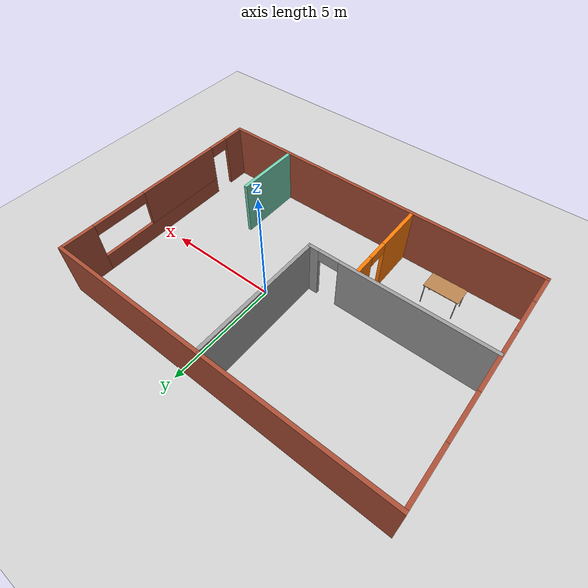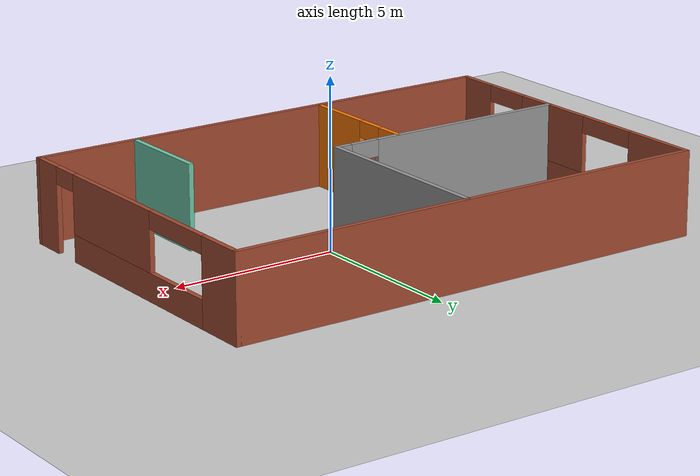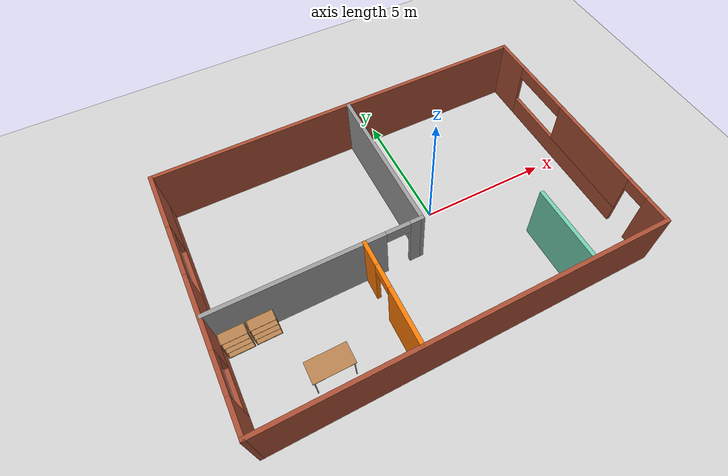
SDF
<sdf version="1.6">
 <world name="default">
  <model name="ground_plane">
   <static>1</static>
   <link name="link">
    <collision name="collision">
     <geometry><plane><normal>0 0 1</normal><size>100 100</size></plane></geometry>
     <surface><friction><ode><mu>100</mu><mu2>50</mu2></ode></friction></surface>
    </collision>
    <visual name="visual">
     <cast_shadows>0</cast_shadows>
     <geometry><plane><normal>0 0 1</normal><size>100 100</size></plane></geometry>
     <material>
      <script><uri>file://media/materials/scripts/gazebo.material</uri><name>Gazebo/Grey</name></script>
     </material>
    </visual>
   </link>
  </model>
  <model name="Building">
   <pose>-1.39723 -0.36677 0 0 -0 0</pose>
   <link name="Wall_15">
    <collision name="Wall_15_Collision">
     <geometry><box><size>15 0.15 2.5</size></box></geometry>
     <pose>0 0 1.25 0 -0 0</pose>
    </collision>
    <visual name="Wall_15_Visual">
     <pose>0 0 1.25 0 -0 0</pose>
     <geometry><box><size>15 0.15 2.5</size></box></geometry>
     <material>
      <script><uri>file://media/materials/scripts/gazebo.material</uri><name>Gazebo/Bricks</name></script>
      <ambient>1 1 1 1</ambient>
     </material>
     <meta><layer>0</layer></meta>
    </visual>
    <pose>0 4.925 0 0 -0 0</pose>
   </link>
   <link name="Wall_16">
    <pose>7.425 0 0 0 0 -1.5708</pose>
    <visual name="Wall_16_Visual_0">
     <pose>-4.22001 0 1.25 0 -0 0</pose>
     <geometry><box><size>1.55997 0.15 2.5</size></box></geometry>
     <material>
      <script><uri>file://media/materials/scripts/gazebo.material</uri><name>Gazebo/Bricks</name></script>
      <ambient>1 1 1 1</ambient>
     </material>
     <meta><layer>0</layer></meta>
    </visual>
    <collision name="Wall_16_Collision_0">
     <geometry><box><size>1.55997 0.15 2.5</size></box></geometry>
     <pose>-4.22001 0 1.25 0 -0 0</pose>
    </collision>
    <visual name="Wall_16_Visual_1">
     <pose>4.45188 0 1.25 0 -0 0</pose>
     <geometry><box><size>1.09624 0.15 2.5</size></box></geometry>
     <material>
      <script><uri>file://media/materials/scripts/gazebo.material</uri><name>Gazebo/Bricks</name></script>
      <ambient>1 1 1 1</ambient>
     </material>
     <meta><layer>0</layer></meta>
    </visual>
    <collision name="Wall_16_Collision_1">
     <geometry><box><size>1.09624 0.15 2.5</size></box></geometry>
     <pose>4.45188 0 1.25 0 -0 0</pose>
    </collision>
    <visual name="Wall_16_Visual_2">
     <pose>-0.218135 0 0.4 0 -0 0</pose>
     <geometry><box><size>6.44378 0.15 0.8</size></box></geometry>
     <material>
      <script><uri>file://media/materials/scripts/gazebo.material</uri><name>Gazebo/Bricks</name></script>
      <ambient>1 1 1 1</ambient>
     </material>
     <meta><layer>0</layer></meta>
    </visual>
    <collision name="Wall_16_Collision_2">
     <geometry><box><size>6.44378 0.15 0.8</size></box></geometry>
     <pose>-0.218135 0 0.4 0 -0 0</pose>
    </collision>
    <visual name="Wall_16_Visual_3">
     <pose>1.03187 0 1.65 0 -0 0</pose>
     <geometry><box><size>3.94378 0.15 1.7</size></box></geometry>
     <material>
      <script><uri>file://media/materials/scripts/gazebo.material</uri><name>Gazebo/Bricks</name></script>
      <ambient>1 1 1 1</ambient>
     </material>
     <meta><layer>0</layer></meta>
    </visual>
    <collision name="Wall_16_Collision_3">
     <geometry><box><size>3.94378 0.15 1.7</size></box></geometry>
     <pose>1.03187 0 1.65 0 -0 0</pose>
    </collision>
    <visual name="Wall_16_Visual_4">
     <pose>3.45376 0 2.25 0 -0 0</pose>
     <geometry><box><size>0.9 0.15 0.5</size></box></geometry>
     <material>
      <script><uri>file://media/materials/scripts/gazebo.material</uri><name>Gazebo/Bricks</name></script>
      <ambient>1 1 1 1</ambient>
     </material>
     <meta><layer>0</layer></meta>
    </visual>
    <collision name="Wall_16_Collision_4">
     <geometry><box><size>0.9 0.15 0.5</size></box></geometry>
     <pose>3.45376 0 2.25 0 -0 0</pose>
    </collision>
    <visual name="Wall_16_Visual_5">
     <pose>-2.19003 0 2.25 0 -0 0</pose>
     <geometry><box><size>2.5 0.15 0.5</size></box></geometry>
     <material>
      <script><uri>file://media/materials/scripts/gazebo.material</uri><name>Gazebo/Bricks</name></script>
      <ambient>1 1 1 1</ambient>
     </material>
     <meta><layer>0</layer></meta>
    </visual>
    <collision name="Wall_16_Collision_5">
     <geometry><box><size>2.5 0.15 0.5</size></box></geometry>
     <pose>-2.19003 0 2.25 0 -0 0</pose>
    </collision>
   </link>
   <link name="Wall_17">
    <collision name="Wall_17_Collision">
     <geometry><box><size>15 0.15 2.5</size></box></geometry>
     <pose>0 0 1.25 0 -0 0</pose>
    </collision>
    <visual name="Wall_17_Visual">
     <pose>0 0 1.25 0 -0 0</pose>
     <geometry><box><size>15 0.15 2.5</size></box></geometry>
     <material>
      <script><uri>file://media/materials/scripts/gazebo.material</uri><name>Gazebo/Bricks</name></script>
      <ambient>1 1 1 1</ambient>
     </material>
     <meta><layer>0</layer></meta>
    </visual>
    <pose>0 -4.925 0 0 -0 3.14159</pose>
   </link>
   <link name="Wall_18">
    <pose>-7.425 0 0 0 -0 1.5708</pose>
    <visual name="Wall_18_Visual_0">
     <pose>-4.32724 0 1.25 0 -0 0</pose>
     <geometry><box><size>1.34552 0.15 2.5</size></box></geometry>
     <material>
      <script><uri>file://media/materials/scripts/gazebo.material</uri><name>Gazebo/Bricks</name></script>
      <ambient>1 1 1 1</ambient>
     </material>
     <meta><layer>0</layer></meta>
    </visual>
    <collision name="Wall_18_Collision_0">
     <geometry><box><size>1.34552 0.15 2.5</size></box></geometry>
     <pose>-4.32724 0 1.25 0 -0 0</pose>
    </collision>
    <visual name="Wall_18_Visual_1">
     <pose>0.672759 0 0.4 0 -0 0</pose>
     <geometry><box><size>8.65448 0.15 0.8</size></box></geometry>
     <material>
      <script><uri>file://media/materials/scripts/gazebo.material</uri><name>Gazebo/Bricks</name></script>
      <ambient>1 1 1 1</ambient>
     </material>
     <meta><layer>0</layer></meta>
    </visual>
    <collision name="Wall_18_Collision_1">
     <geometry><box><size>8.65448 0.15 0.8</size></box></geometry>
     <pose>0.672759 0 0.4 0 -0 0</pose>
    </collision>
    <visual name="Wall_18_Visual_2">
     <pose>-0.765256 0 1.65 0 -0 0</pose>
     <geometry><box><size>2.77845 0.15 1.7</size></box></geometry>
     <material>
      <script><uri>file://media/materials/scripts/gazebo.material</uri><name>Gazebo/Bricks</name></script>
      <ambient>1 1 1 1</ambient>
     </material>
     <meta><layer>0</layer></meta>
    </visual>
    <collision name="Wall_18_Collision_2">
     <geometry><box><size>2.77845 0.15 1.7</size></box></geometry>
     <pose>-0.765256 0 1.65 0 -0 0</pose>
    </collision>
    <visual name="Wall_18_Visual_3">
     <pose>3.81198 0 1.65 0 -0 0</pose>
     <geometry><box><size>2.37603 0.15 1.7</size></box></geometry>
     <material>
      <script><uri>file://media/materials/scripts/gazebo.material</uri><name>Gazebo/Bricks</name></script>
      <ambient>1 1 1 1</ambient>
     </material>
     <meta><layer>0</layer></meta>
    </visual>
    <collision name="Wall_18_Collision_3">
     <geometry><box><size>2.37603 0.15 1.7</size></box></geometry>
     <pose>3.81198 0 1.65 0 -0 0</pose>
    </collision>
    <visual name="Wall_18_Visual_4">
     <pose>-2.90448 0 2.25 0 -0 0</pose>
     <geometry><box><size>1.5 0.15 0.5</size></box></geometry>
     <material>
      <script><uri>file://media/materials/scripts/gazebo.material</uri><name>Gazebo/Bricks</name></script>
      <ambient>1 1 1 1</ambient>
     </material>
     <meta><layer>0</layer></meta>
    </visual>
    <collision name="Wall_18_Collision_4">
     <geometry><box><size>1.5 0.15 0.5</size></box></geometry>
     <pose>-2.90448 0 2.25 0 -0 0</pose>
    </collision>
    <visual name="Wall_18_Visual_5">
     <pose>1.62397 0 2.25 0 -0 0</pose>
     <geometry><box><size>2 0.15 0.5</size></box></geometry>
     <material>
      <script><uri>file://media/materials/scripts/gazebo.material</uri><name>Gazebo/Bricks</name></script>
      <ambient>1 1 1 1</ambient>
     </material>
     <meta><layer>0</layer></meta>
    </visual>
    <collision name="Wall_18_Collision_5">
     <geometry><box><size>2 0.15 0.5</size></box></geometry>
     <pose>1.62397 0 2.25 0 -0 0</pose>
    </collision>
   </link>
   <link name="Wall_23">
    <pose>-3.58227 -0.985767 0 0 -0 0</pose>
    <visual name="Wall_23_Visual_0">
     <pose>-0.718243 0 1.25 0 -0 0</pose>
     <geometry><box><size>6.31351 0.15 2.5</size></box></geometry>
     <material>
      <script><uri>file://media/materials/scripts/gazebo.material</uri><name>Gazebo/Grey</name></script>
      <ambient>1 1 1 1</ambient>
     </material>
     <meta><layer>0</layer></meta>
    </visual>
    <collision name="Wall_23_Collision_0">
     <geometry><box><size>6.31351 0.15 2.5</size></box></geometry>
     <pose>-0.718243 0 1.25 0 -0 0</pose>
    </collision>
    <visual name="Wall_23_Visual_1">
     <pose>3.60676 0 1.25 0 -0 0</pose>
     <geometry><box><size>0.536487 0.15 2.5</size></box></geometry>
     <material>
      <script><uri>file://media/materials/scripts/gazebo.material</uri><name>Gazebo/Grey</name></script>
      <ambient>1 1 1 1</ambient>
     </material>
     <meta><layer>0</layer></meta>
    </visual>
    <collision name="Wall_23_Collision_1">
     <geometry><box><size>0.536487 0.15 2.5</size></box></geometry>
     <pose>3.60676 0 1.25 0 -0 0</pose>
    </collision>
    <visual name="Wall_23_Visual_2">
     <pose>2.88851 0 2.25 0 -0 0</pose>
     <geometry><box><size>0.9 0.15 0.5</size></box></geometry>
     <material>
      <script><uri>file://media/materials/scripts/gazebo.material</uri><name>Gazebo/Grey</name></script>
      <ambient>1 1 1 1</ambient>
     </material>
     <meta><layer>0</layer></meta>
    </visual>
    <collision name="Wall_23_Collision_2">
     <geometry><box><size>0.9 0.15 0.5</size></box></geometry>
     <pose>2.88851 0 2.25 0 -0 0</pose>
    </collision>
   </link>
   <link name="Wall_24">
    <collision name="Wall_24_Collision">
     <geometry><box><size>6 0.15 2.5</size></box></geometry>
     <pose>0 0 1.25 0 -0 0</pose>
    </collision>
    <visual name="Wall_24_Visual">
     <pose>0 0 1.25 0 -0 0</pose>
     <geometry><box><size>6 0.15 2.5</size></box></geometry>
     <material>
      <script><uri>file://media/materials/scripts/gazebo.material</uri><name>Gazebo/Grey</name></script>
      <ambient>1 1 1 1</ambient>
     </material>
     <meta><layer>0</layer></meta>
    </visual>
    <pose>0.217727 1.93923 0 0 -0 1.5708</pose>
   </link>
   <link name="Wall_26">
    <pose>-1.91826 -2.92501 0 0 0 -1.5708</pose>
    <visual name="Wall_26_Visual_0">
     <pose>-1.5205 0 1.25 0 -0 0</pose>
     <geometry><box><size>0.959 0.15 2.5</size></box></geometry>
     <material>
      <script><uri>file://media/materials/scripts/gazebo.material</uri><name>Gazebo/Grey</name></script>
      <ambient>0.996078 0.47451 0.0196078 1</ambient>
     </material>
     <meta><layer>0</layer></meta>
    </visual>
    <collision name="Wall_26_Collision_0">
     <geometry><box><size>0.959 0.15 2.5</size></box></geometry>
     <pose>-1.5205 0 1.25 0 -0 0</pose>
    </collision>
    <visual name="Wall_26_Visual_1">
     <pose>0.9295 0 1.25 0 -0 0</pose>
     <geometry><box><size>2.141 0.15 2.5</size></box></geometry>
     <material>
      <script><uri>file://media/materials/scripts/gazebo.material</uri><name>Gazebo/Grey</name></script>
      <ambient>0.996078 0.47451 0.0196078 1</ambient>
     </material>
     <meta><layer>0</layer></meta>
    </visual>
    <collision name="Wall_26_Collision_1">
     <geometry><box><size>2.141 0.15 2.5</size></box></geometry>
     <pose>0.9295 0 1.25 0 -0 0</pose>
    </collision>
    <visual name="Wall_26_Visual_2">
     <pose>-0.591 0 2.25 0 -0 0</pose>
     <geometry><box><size>0.9 0.15 0.5</size></box></geometry>
     <material>
      <script><uri>file://media/materials/scripts/gazebo.material</uri><name>Gazebo/Grey</name></script>
      <ambient>0.996078 0.47451 0.0196078 1</ambient>
     </material>
     <meta><layer>0</layer></meta>
    </visual>
    <collision name="Wall_26_Collision_2">
     <geometry><box><size>0.9 0.15 0.5</size></box></geometry>
     <pose>-0.591 0 2.25 0 -0 0</pose>
    </collision>
   </link>
   <link name="Wall_28">
    <collision name="Wall_28_Collision">
     <geometry><box><size>3 0.15 2.5</size></box></geometry>
     <pose>0 0 1.25 0 -0 0</pose>
    </collision>
    <visual name="Wall_28_Visual">
     <pose>0 0 1.25 0 -0 0</pose>
     <geometry><box><size>3 0.15 2.5</size></box></geometry>
     <material>
      <script><uri>file://media/materials/scripts/gazebo.material</uri><name>Gazebo/Grey</name></script>
      <ambient>0.435294 0.796078 0.67451 1</ambient>
     </material>
     <meta><layer>0</layer></meta>
    </visual>
    <pose>4.38813 -3.48002 0 0 0 -1.5708</pose>
   </link>
   <static>1</static>
  </model>
  <model name="table">
   <static>1</static>
   <link name="link">
    <collision name="surface">
     <pose>0 0 1 0 -0 0</pose>
     <geometry><box><size>1.5 0.8 0.03</size></box></geometry>
     <surface><friction><ode><mu>0.6</mu><mu2>0.6</mu2></ode></friction></surface>
    </collision>
    <visual name="visual1">
     <pose>0 0 1 0 -0 0</pose>
     <geometry><box><size>1.5 0.8 0.03</size></box></geometry>
     <material>
      <script><uri>file://media/materials/scripts/gazebo.material</uri><name>Gazebo/Wood</name></script>
     </material>
    </visual>
    <collision name="front_left_leg">
     <pose>0.68 0.38 0.5 0 -0 0</pose>
     <geometry><cylinder><radius>0.02</radius><length>1</length></cylinder></geometry>
    </collision>
    <visual name="front_left_leg">
     <pose>0.68 0.38 0.5 0 -0 0</pose>
     <geometry><cylinder><radius>0.02</radius><length>1</length></cylinder></geometry>
     <material>
      <script><uri>file://media/materials/scripts/gazebo.material</uri><name>Gazebo/Grey</name></script>
     </material>
    </visual>
    <collision name="front_right_leg">
     <pose>0.68 -0.38 0.5 0 -0 0</pose>
     <geometry><cylinder><radius>0.02</radius><length>1</length></cylinder></geometry>
    </collision>
    <visual name="front_right_leg">
     <pose>0.68 -0.38 0.5 0 -0 0</pose>
     <geometry><cylinder><radius>0.02</radius><length>1</length></cylinder></geometry>
     <material>
      <script><uri>file://media/materials/scripts/gazebo.material</uri><name>Gazebo/Grey</name></script>
     </material>
    </visual>
    <collision name="back_right_leg">
     <pose>-0.68 -0.38 0.5 0 -0 0</pose>
     <geometry><cylinder><radius>0.02</radius><length>1</length></cylinder></geometry>
    </collision>
    <visual name="back_right_leg">
     <pose>-0.68 -0.38 0.5 0 -0 0</pose>
     <geometry><cylinder><radius>0.02</radius><length>1</length></cylinder></geometry>
     <material>
      <script><uri>file://media/materials/scripts/gazebo.material</uri><name>Gazebo/Grey</name></script>
     </material>
    </visual>
    <collision name="back_left_leg">
     <pose>-0.68 0.38 0.5 0 -0 0</pose>
     <geometry><cylinder><radius>0.02</radius><length>1</length></cylinder></geometry>
    </collision>
    <visual name="back_left_leg">
     <pose>-0.68 0.38 0.5 0 -0 0</pose>
     <geometry><cylinder><radius>0.02</radius><length>1</length></cylinder></geometry>
     <material>
      <script><uri>file://media/materials/scripts/gazebo.material</uri><name>Gazebo/Grey</name></script>
     </material>
    </visual>
   </link>
   <pose>-5.85942 -3.93983 0 0 -0 0</pose>
  </model>
  <model name="bookshelf">
   <static>1</static>
   <link name="link">
    <inertial><mass>1</mass></inertial>
    <collision name="back">
     <pose>0 0.005 0.6 0 -0 0</pose>
     <geometry><box><size>0.9 0.01 1.2</size></box></geometry>
    </collision>
    <visual name="visual1">
     <pose>0 0.005 0.6 0 -0 0</pose>
     <geometry><box><size>0.9 0.01 1.2</size></box></geometry>
     <material>
      <script><uri>file://media/materials/scripts/gazebo.material</uri><name>Gazebo/Wood</name></script>
     </material>
    </visual>
    <collision name="left_side">
     <pose>0.45 -0.195 0.6 0 -0 0</pose>
     <geometry><box><size>0.02 0.4 1.2</size></box></geometry>
    </collision>
    <visual name="visual2">
     <pose>0.45 -0.195 0.6 0 -0 0</pose>
     <geometry><box><size>0.02 0.4 1.2</size></box></geometry>
     <material>
      <script><uri>file://media/materials/scripts/gazebo.material</uri><name>Gazebo/Wood</name></script>
     </material>
    </visual>
    <collision name="right_side">
     <pose>-0.45 -0.195 0.6 0 -0 0</pose>
     <geometry><box><size>0.02 0.4 1.2</size></box></geometry>
    </collision>
    <visual name="visual3">
     <pose>-0.45 -0.195 0.6 0 -0 0</pose>
     <geometry><box><size>0.02 0.4 1.2</size></box></geometry>
     <material>
      <script><uri>file://media/materials/scripts/gazebo.material</uri><name>Gazebo/Wood</name></script>
     </material>
    </visual>
    <collision name="bottom">
     <pose>0 -0.195 0.03 0 -0 0</pose>
     <geometry><box><size>0.88 0.4 0.06</size></box></geometry>
    </collision>
    <visual name="visual4">
     <pose>0 -0.195 0.03 0 -0 0</pose>
     <geometry><box><size>0.88 0.4 0.06</size></box></geometry>
     <material>
      <script><uri>file://media/materials/scripts/gazebo.material</uri><name>Gazebo/Wood</name></script>
     </material>
    </visual>
    <collision name="top">
     <pose>0 -0.195 1.19 0 -0 0</pose>
     <geometry><box><size>0.88 0.4 0.02</size></box></geometry>
    </collision>
    <visual name="visual5">
     <pose>0 -0.195 1.19 0 -0 0</pose>
     <geometry><box><size>0.88 0.4 0.02</size></box></geometry>
     <material>
      <script><uri>file://media/materials/scripts/gazebo.material</uri><name>Gazebo/Wood</name></script>
     </material>
    </visual>
    <collision name="low_shelf">
     <pose>0 -0.195 0.43 0 -0 0</pose>
     <geometry><box><size>0.88 0.4 0.02</size></box></geometry>
    </collision>
    <visual name="visual6">
     <pose>0 -0.195 0.43 0 -0 0</pose>
     <geometry><box><size>0.88 0.4 0.02</size></box></geometry>
     <material>
      <script><uri>file://media/materials/scripts/gazebo.material</uri><name>Gazebo/Wood</name></script>
     </material>
    </visual>
    <collision name="high_shelf">
     <pose>0 -0.195 0.8 0 -0 0</pose>
     <geometry><box><size>0.88 0.4 0.02</size></box></geometry>
    </collision>
    <visual name="visual7">
     <pose>0 -0.195 0.8 0 -0 0</pose>
     <geometry><box><size>0.88 0.4 0.02</size></box></geometry>
     <material>
      <script><uri>file://media/materials/scripts/gazebo.material</uri><name>Gazebo/Wood</name></script>
     </material>
    </visual>
   </link>
   <pose>-8.24703 -1.50181 0 0 -0 0</pose>
  </model>
  <model name="bookshelf_0">
   <static>1</static>
   <link name="link">
    <inertial><mass>1</mass></inertial>
    <collision name="back">
     <pose>0 0.005 0.6 0 -0 0</pose>
     <geometry><box><size>0.9 0.01 1.2</size></box></geometry>
    </collision>
    <visual name="visual1">
     <pose>0 0.005 0.6 0 -0 0</pose>
     <geometry><box><size>0.9 0.01 1.2</size></box></geometry>
     <material>
      <script><uri>file://media/materials/scripts/gazebo.material</uri><name>Gazebo/Wood</name></script>
     </material>
    </visual>
    <collision name="left_side">
     <pose>0.45 -0.195 0.6 0 -0 0</pose>
     <geometry><box><size>0.02 0.4 1.2</size></box></geometry>
    </collision>
    <visual name="visual2">
     <pose>0.45 -0.195 0.6 0 -0 0</pose>
     <geometry><box><size>0.02 0.4 1.2</size></box></geometry>
     <material>
      <script><uri>file://media/materials/scripts/gazebo.material</uri><name>Gazebo/Wood</name></script>
     </material>
    </visual>
    <collision name="right_side">
     <pose>-0.45 -0.195 0.6 0 -0 0</pose>
     <geometry><box><size>0.02 0.4 1.2</size></box></geometry>
    </collision>
    <visual name="visual3">
     <pose>-0.45 -0.195 0.6 0 -0 0</pose>
     <geometry><box><size>0.02 0.4 1.2</size></box></geometry>
     <material>
      <script><uri>file://media/materials/scripts/gazebo.material</uri><name>Gazebo/Wood</name></script>
     </material>
    </visual>
    <collision name="bottom">
     <pose>0 -0.195 0.03 0 -0 0</pose>
     <geometry><box><size>0.88 0.4 0.06</size></box></geometry>
    </collision>
    <visual name="visual4">
     <pose>0 -0.195 0.03 0 -0 0</pose>
     <geometry><box><size>0.88 0.4 0.06</size></box></geometry>
     <material>
      <script><uri>file://media/materials/scripts/gazebo.material</uri><name>Gazebo/Wood</name></script>
     </material>
    </visual>
    <collision name="top">
     <pose>0 -0.195 1.19 0 -0 0</pose>
     <geometry><box><size>0.88 0.4 0.02</size></box></geometry>
    </collision>
    <visual name="visual5">
     <pose>0 -0.195 1.19 0 -0 0</pose>
     <geometry><box><size>0.88 0.4 0.02</size></box></geometry>
     <material>
      <script><uri>file://media/materials/scripts/gazebo.material</uri><name>Gazebo/Wood</name></script>
     </material>
    </visual>
    <collision name="low_shelf">
     <pose>0 -0.195 0.43 0 -0 0</pose>
     <geometry><box><size>0.88 0.4 0.02</size></box></geometry>
    </collision>
    <visual name="visual6">
     <pose>0 -0.195 0.43 0 -0 0</pose>
     <geometry><box><size>0.88 0.4 0.02</size></box></geometry>
     <material>
      <script><uri>file://media/materials/scripts/gazebo.material</uri><name>Gazebo/Wood</name></script>
     </material>
    </visual>
    <collision name="high_shelf">
     <pose>0 -0.195 0.8 0 -0 0</pose>
     <geometry><box><size>0.88 0.4 0.02</size></box></geometry>
    </collision>
    <visual name="visual7">
     <pose>0 -0.195 0.8 0 -0 0</pose>
     <geometry><box><size>0.88 0.4 0.02</size></box></geometry>
     <material>
      <script><uri>file://media/materials/scripts/gazebo.material</uri><name>Gazebo/Wood</name></script>
     </material>
    </visual>
   </link>
   <pose>-7.27009 -1.48817 0 0 -0 0</pose>
  </model>
 </world>
</sdf>
